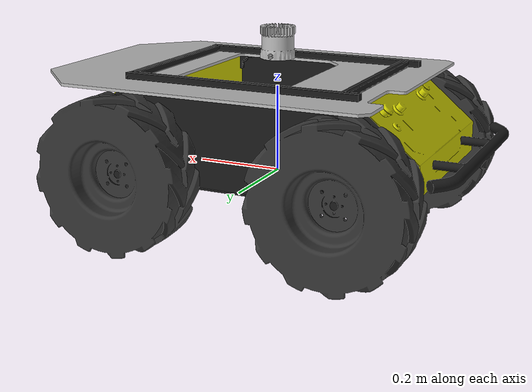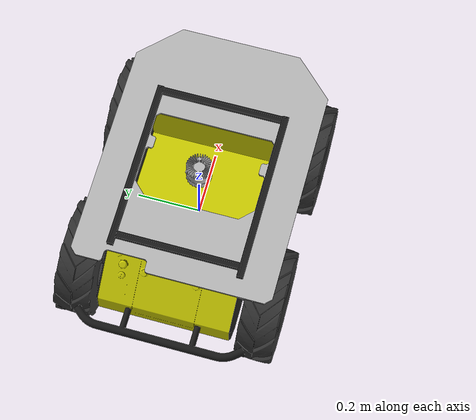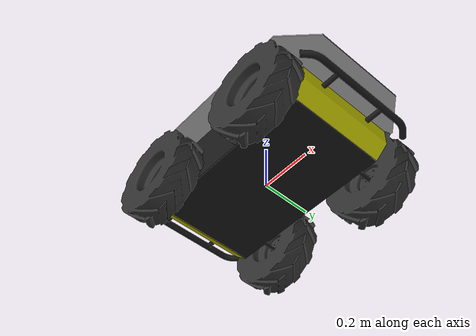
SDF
<sdf version='1.7'>
  <model name='husky'>
    <link name='base_link'>
      <inertial>
        <pose>-0.000634 -0.08294 0.067767 0 -0 0</pose>
        <mass>5.159</mass>
        <inertia>
          <ixx>0.61099</ixx>
          <ixy>-0.0236467</ixy>
          <ixz>-0.119719</ixz>
          <iyy>1.74651</iyy>
          <iyz>-0.00401148</iyz>
          <izz>2.03148</izz>
        </inertia>
      </inertial>
      <collision name='base_link_collision'>
        <pose>0 0 0 0 -0 0</pose>
        <geometry>
          <mesh>
            <scale>1 1 1</scale>
            <uri>model://husky_ual_description/meshes/base_link_logo.dae</uri>
          </mesh>
        </geometry>
      </collision>
      <collision name='base_link_fixed_joint_lump__lidar_link_collision_1'>
        <pose>0 0 0.3 0 -0 0</pose>
        <geometry>
          <mesh>
            <scale>1 1 1</scale>
            <uri>model://husky_ual_description/meshes/os0_32.dae</uri>
          </mesh>
        </geometry>
        <surface>
          <contact>
            <ode/>
          </contact>
          <friction>
            <ode/>
          </friction>
        </surface>
      </collision>
      <collision name='base_link_fixed_joint_lump__top_plate_link_collision_2'>
        <pose>0.0812 0 0.225 0 -0 0</pose>
        <geometry>
          <mesh>
            <scale>1 1 1</scale>
            <uri>model://husky_ual_description/meshes/large_top_plate_collision.stl</uri>
          </mesh>
        </geometry>
      </collision>
      <visual name='base_link_visual'>
        <pose>0 0 0 0 -0 0</pose>
        <geometry>
          <mesh>
            <scale>1 1 1</scale>
            <uri>model://husky_ual_description/meshes/base_link_logo.dae</uri>
          </mesh>
        </geometry>
      </visual>
      <visual name='base_link_fixed_joint_lump__front_bumper_link_visual_1'>
        <pose>0.48 0 0.091 0 -0 0</pose>
        <geometry>
          <mesh>
            <scale>1 1 1</scale>
            <uri>model://husky_description/meshes/bumper.dae</uri>
          </mesh>
        </geometry>
      </visual>
      <visual name='base_link_fixed_joint_lump__lidar_link_visual_2'>
        <pose>0 0 0.3 0 -0 0</pose>
        <geometry>
          <mesh>
            <scale>1 1 1</scale>
            <uri>model://husky_ual_description/meshes/os0_32.dae</uri>
          </mesh>
        </geometry>
      </visual>
      <visual name='base_link_fixed_joint_lump__rear_bumper_link_visual_3'>
        <pose>-0.48 0 0.091 0 0 -3.14128</pose>
        <geometry>
          <mesh>
            <scale>1 1 1</scale>
            <uri>model://husky_description/meshes/bumper.dae</uri>
          </mesh>
        </geometry>
      </visual>
      <visual name='base_link_fixed_joint_lump__top_chassis_link_visual_4'>
        <pose>0 0 0 0 -0 0</pose>
        <geometry>
          <mesh>
            <scale>1 1 1</scale>
            <uri>model://husky_description/meshes/top_chassis.dae</uri>
          </mesh>
        </geometry>
      </visual>
      <visual name='base_link_fixed_joint_lump__top_plate_link_visual_5'>
        <pose>0.0812 0 0.225 0 -0 0</pose>
        <geometry>
          <mesh>
            <scale>1 1 1</scale>
            <uri>model://husky_description/meshes/large_top_plate.dae</uri>
          </mesh>
        </geometry>
      </visual>
      <visual name='base_link_fixed_joint_lump__user_rail_link_visual_6'>
        <pose>0.272 0 0.245 0 -0 0</pose>
        <geometry>
          <mesh>
            <scale>1 1 1</scale>
            <uri>model://husky_description/meshes/user_rail.dae</uri>
          </mesh>
        </geometry>
      </visual>

    </link>
    <joint name='back_left_wheel_joint' type='revolute'>
      <pose relative_to='base_link'>-0.256 0.285475 0.035 0 -0 0</pose>
      <parent>base_link</parent>
      <child>back_left_wheel</child>
      <axis>
        <xyz>0 1 0</xyz>
        <limit>
          <effort>10000</effort>
          <velocity>1000</velocity>
          <lower>-1e+16</lower>
          <upper>1e+16</upper>
        </limit>
        <dynamics>
          <spring_reference>0</spring_reference>
          <spring_stiffness>0</spring_stiffness>
        </dynamics>
      </axis>
    </joint>
    <link name='back_left_wheel'>
      <pose relative_to='back_left_wheel_joint'>0 0 0 0 -0 0</pose>
      <inertial>
        <pose>0 0 0 0 -0 0</pose>
        <mass>2.637</mass>
        <inertia>
          <ixx>0.0246688</ixx>
          <ixy>0</ixy>
          <ixz>0</ixz>
          <iyy>0.0246688</iyy>
          <iyz>0</iyz>
          <izz>0.0441058</izz>
        </inertia>
      </inertial>
      <collision name='back_left_wheel_collision'>
        <pose>0 0 0 1.5708 -0 0</pose>
        <geometry>
          <cylinder>
            <length>0.1143</length>
            <radius>0.17775</radius>
          </cylinder>
        </geometry>
      </collision>
      <visual name='back_left_wheel_visual'>
        <pose>0 0 0 0 -0 0</pose>
        <geometry>
          <mesh>
            <scale>1 1 1</scale>
            <uri>model://husky_description/meshes/wheel.dae</uri>
          </mesh>
        </geometry>
      </visual>
    </link>
    <joint name='back_right_wheel_joint' type='revolute'>
      <pose relative_to='base_link'>-0.256 -0.285475 0.035 0 -0 0</pose>
      <parent>base_link</parent>
      <child>back_right_wheel</child>
      <axis>
        <xyz>0 1 0</xyz>
        <limit>
          <effort>10000</effort>
          <velocity>1000</velocity>
          <lower>-1e+16</lower>
          <upper>1e+16</upper>
        </limit>
        <dynamics>
          <spring_reference>0</spring_reference>
          <spring_stiffness>0</spring_stiffness>
        </dynamics>
      </axis>
    </joint>
    <link name='back_right_wheel'>
      <pose relative_to='back_right_wheel_joint'>0 0 0 0 -0 0</pose>
      <inertial>
        <pose>0 0 0 0 -0 0</pose>
        <mass>2.637</mass>
        <inertia>
          <ixx>0.0246688</ixx>
          <ixy>0</ixy>
          <ixz>0</ixz>
          <iyy>0.0246688</iyy>
          <iyz>0</iyz>
          <izz>0.0441058</izz>
        </inertia>
      </inertial>
      <collision name='back_right_wheel_collision'>
        <pose>0 0 0 1.5708 -0 0</pose>
        <geometry>
          <cylinder>
            <length>0.1143</length>
            <radius>0.17775</radius>
          </cylinder>
        </geometry>
      </collision>
      <visual name='back_right_wheel_visual'>
        <pose>0 0 0 0 -0 0</pose>
        <geometry>
          <mesh>
            <scale>1 1 1</scale>
            <uri>model://husky_description/meshes/wheel.dae</uri>
          </mesh>
        </geometry>
      </visual>
    </link>
    <joint name='front_left_wheel_joint' type='revolute'>
      <pose relative_to='base_link'>0.256 0.285475 0.035 0 -0 0</pose>
      <parent>base_link</parent>
      <child>front_left_wheel</child>
      <axis>
        <xyz>0 1 0</xyz>
        <limit>
          <effort>10000</effort>
          <velocity>1000</velocity>
          <lower>-1e+16</lower>
          <upper>1e+16</upper>
        </limit>
        <dynamics>
          <spring_reference>0</spring_reference>
          <spring_stiffness>0</spring_stiffness>
        </dynamics>
      </axis>
    </joint>
    <link name='front_left_wheel'>
      <pose relative_to='front_left_wheel_joint'>0 0 0 0 -0 0</pose>
      <inertial>
        <pose>0 0 0 0 -0 0</pose>
        <mass>2.637</mass>
        <inertia>
          <ixx>0.0246688</ixx>
          <ixy>0</ixy>
          <ixz>0</ixz>
          <iyy>0.0246688</iyy>
          <iyz>0</iyz>
          <izz>0.0441058</izz>
        </inertia>
      </inertial>
      <collision name='front_left_wheel_collision'>
        <pose>0 0 0 1.5708 -0 0</pose>
        <geometry>
          <cylinder>
            <length>0.1143</length>
            <radius>0.17775</radius>
          </cylinder>
        </geometry>
      </collision>
      <visual name='front_left_wheel_visual'>
        <pose>0 0 0 0 -0 0</pose>
        <geometry>
          <mesh>
            <scale>1 1 1</scale>
            <uri>model://husky_description/meshes/wheel.dae</uri>
          </mesh>
        </geometry>
      </visual>
    </link>
    <joint name='front_right_wheel_joint' type='revolute'>
      <pose relative_to='base_link'>0.256 -0.285475 0.035 0 -0 0</pose>
      <parent>base_link</parent>
      <child>front_right_wheel</child>
      <axis>
        <xyz>0 1 0</xyz>
        <limit>
          <effort>10000</effort>
          <velocity>1000</velocity>
          <lower>-1e+16</lower>
          <upper>1e+16</upper>
        </limit>
        <dynamics>
          <spring_reference>0</spring_reference>
          <spring_stiffness>0</spring_stiffness>
        </dynamics>
      </axis>
    </joint>
    <link name='front_right_wheel'>
      <pose relative_to='front_right_wheel_joint'>0 0 0 0 -0 0</pose>
      <inertial>
        <pose>0 0 0 0 -0 0</pose>
        <mass>2.637</mass>
        <inertia>
          <ixx>0.0246688</ixx>
          <ixy>0</ixy>
          <ixz>0</ixz>
          <iyy>0.0246688</iyy>
          <iyz>0</iyz>
          <izz>0.0441058</izz>
        </inertia>
      </inertial>
      <collision name='front_right_wheel_collision'>
        <pose>0 0 0 1.5708 -0 0</pose>
        <geometry>
          <cylinder>
            <length>0.1143</length>
            <radius>0.17775</radius>
          </cylinder>
        </geometry>
      </collision>
      <visual name='front_right_wheel_visual'>
        <pose>0 0 0 0 -0 0</pose>
        <geometry>
          <mesh>
            <scale>1 1 1</scale>
            <uri>model://husky_description/meshes/wheel.dae</uri>
          </mesh>
        </geometry>
      </visual>
    </link>
    <static>0</static>
    <plugin name='skid_steer_drive' modelname='libgazebo_ros_diff_drive.so'>
      <update_rate>100.0</update_rate>
      <num_wheel_pairs>2</num_wheel_pairs>
      <left_joint>front_left_wheel_joint</left_joint>
      <right_joint>front_right_wheel_joint</right_joint>
      <left_joint>back_left_wheel_joint</left_joint>
      <right_joint>back_right_wheel_joint</right_joint>
      <wheel_separation>0.5709</wheel_separation>
      <wheel_separation>0.5709</wheel_separation>
      <wheel_diameter>0.3555</wheel_diameter>
      <wheel_diameter>0.3555</wheel_diameter>
      <robot_base_frame>base_link</robot_base_frame>
      <max_wheel_torque>35</max_wheel_torque>
      <max_wheel_acceleration>5.0</max_wheel_acceleration>
      <ros>
        <remapping>cmd_vel:=cmd_vel</remapping>
        <remapping>odom:=odom</remapping>
      </ros>
      <publish_odom>1</publish_odom>
      <publish_odom_tf>1</publish_odom_tf>
      <publish_wheel_tf>1</publish_wheel_tf>
      <odometry_frame>odom</odometry_frame>
    </plugin>
  </model>
</sdf>
